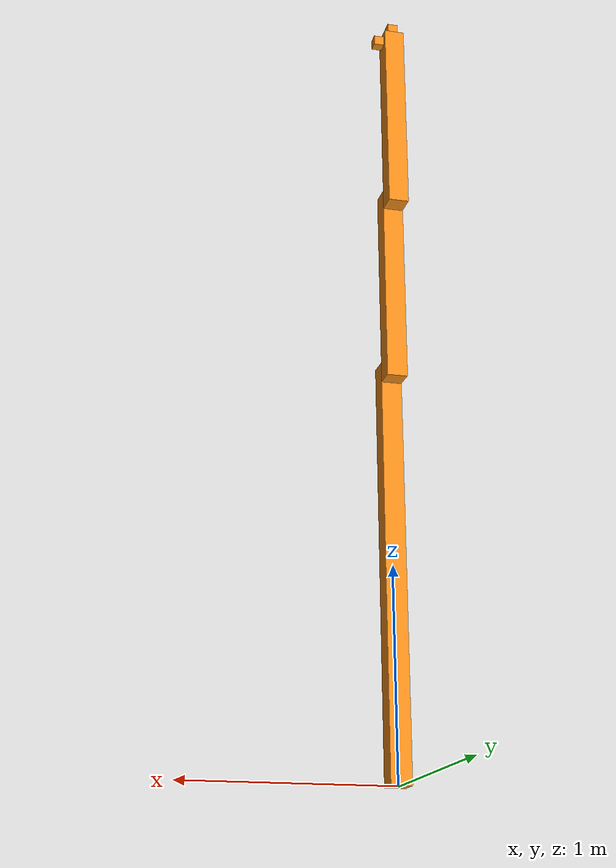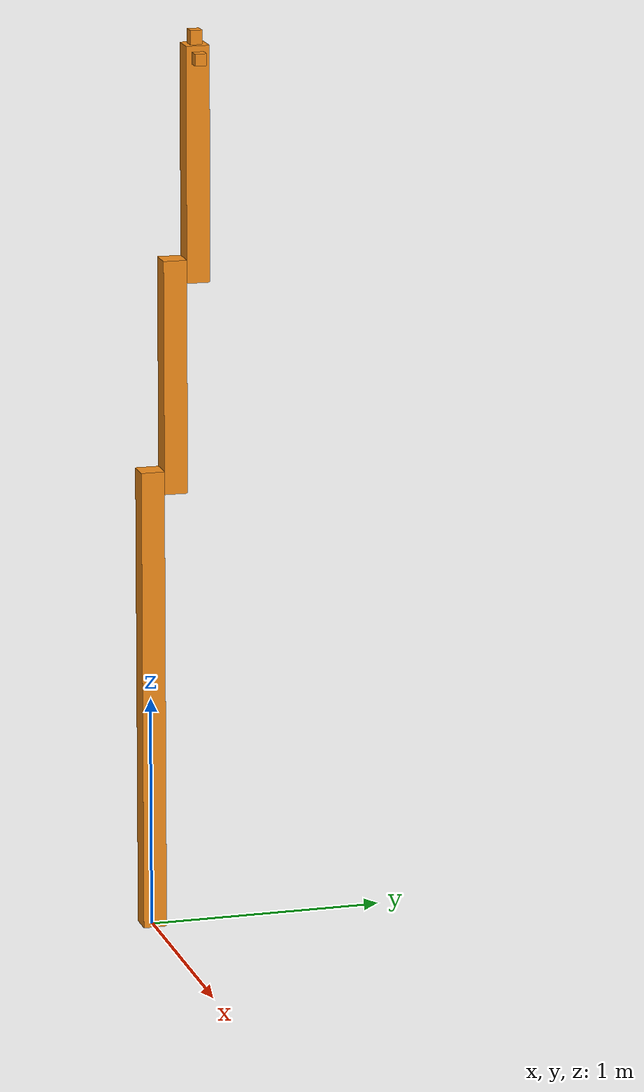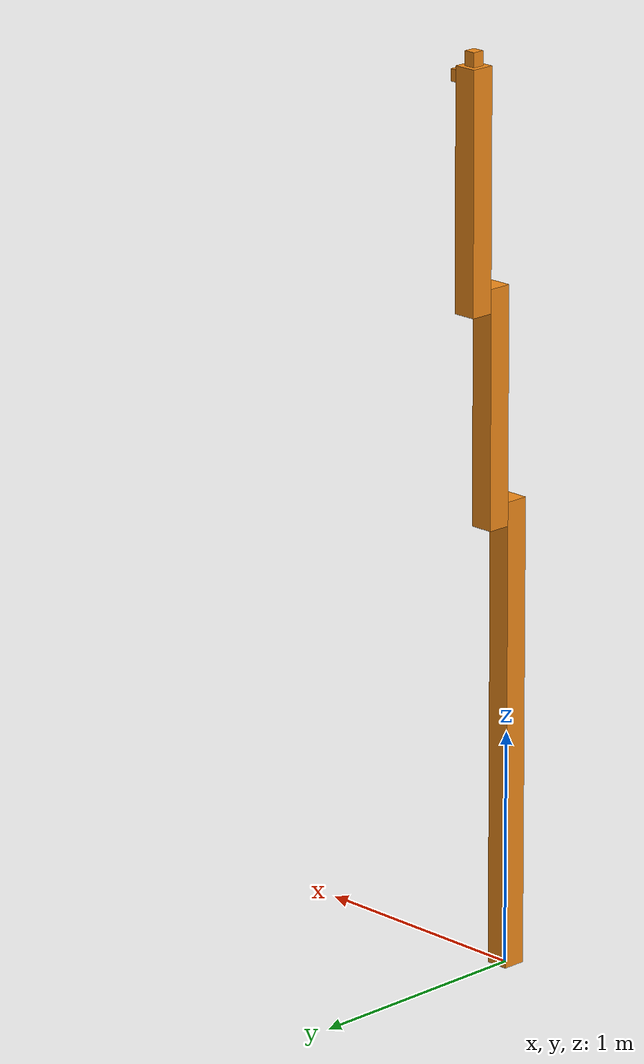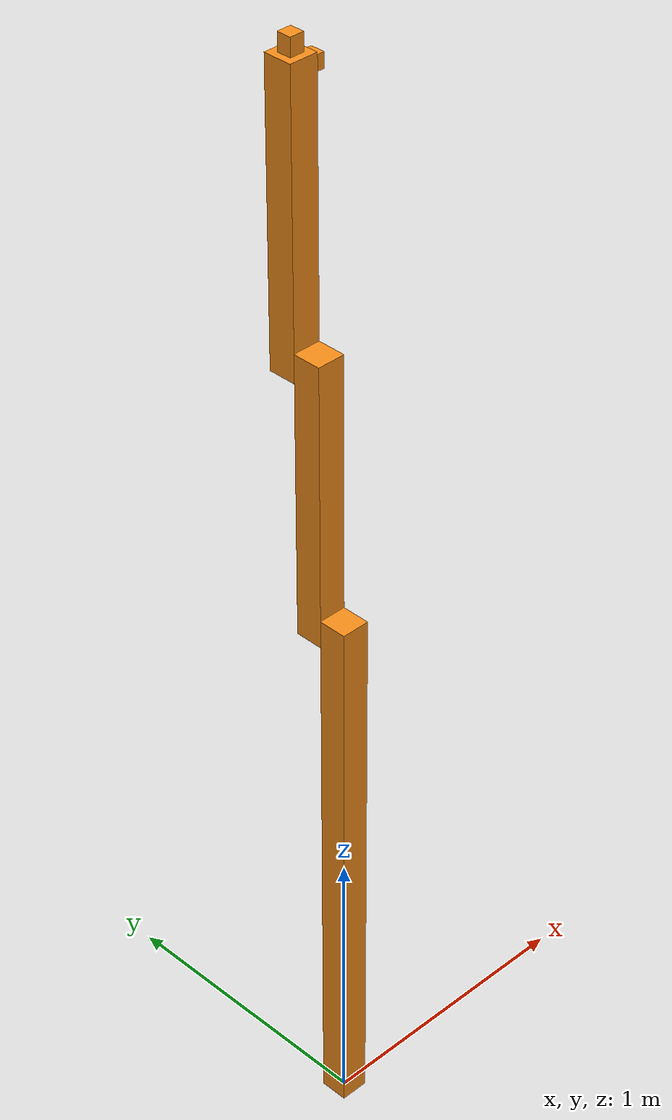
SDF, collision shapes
<sdf version='1.7'>
  <model name='rrbot'>
    <joint name='base_joint' type='fixed'>
      <pose relative_to='__model__'>0 0 0 0 -0 0</pose>
      <parent>world</parent>
      <child>base</child>
    </joint>
    <link name='base'>
      <pose relative_to='base_joint'>0 0 0 0 -0 0</pose>
      <inertial>
        <pose>0 0 1 0 -0 0</pose>
        <mass>1</mass>
        <inertia>
          <ixx>0.334167</ixx>
          <ixy>0</ixy>
          <ixz>0</ixz>
          <iyy>0.334167</iyy>
          <iyz>0</iyz>
          <izz>0.00166667</izz>
        </inertia>
      </inertial>
      <collision name='base_collision'>
        <pose>0 0 1 0 -0 0</pose>
        <geometry>
          <box>
            <size>0.1 0.1 2</size>
          </box>
        </geometry>
        <surface>
          <contact>
            <ode/>
          </contact>
          <friction>
            <ode>
              <mu>0.2</mu>
              <mu2>0.2</mu2>
            </ode>
          </friction>
        </surface>
      </collision>
      <visual name='base_visual'>
        <pose>0 0 1 0 -0 0</pose>
        <geometry>
          <box>
            <size>0.1 0.1 2</size>
          </box>
        </geometry>
        <material>
          <script>
            <name>Gazebo/Orange</name>
            <uri>file://media/materials/scripts/gazebo.material</uri>
          </script>
        </material>
      </visual>
    </link>
    <joint name='joint1' type='revolute'>
      <pose relative_to='base'>0 0.1 1.95 0 -0 0</pose>
      <parent>base</parent>
      <child>link2</child>
      <axis>
        <xyz>0 1 0</xyz>
        <limit>
          <lower>-1e+16</lower>
          <upper>1e+16</upper>
        </limit>
        <dynamics>
          <damping>0.7</damping>
          <friction>0</friction>
          <spring_reference>0</spring_reference>
          <spring_stiffness>0</spring_stiffness>
        </dynamics>
      </axis>
    </joint>
    <link name='link2'>
      <pose relative_to='joint1'>0 0 0 0 -0 0</pose>
      <inertial>
        <pose>0 0 0.45 0 -0 0</pose>
        <mass>1</mass>
        <inertia>
          <ixx>0.0841667</ixx>
          <ixy>0</ixy>
          <ixz>0</ixz>
          <iyy>0.0841667</iyy>
          <iyz>0</iyz>
          <izz>0.00166667</izz>
        </inertia>
      </inertial>
      <collision name='link2_collision'>
        <pose>0 0 0.45 0 -0 0</pose>
        <geometry>
          <box>
            <size>0.1 0.1 1</size>
          </box>
        </geometry>
        <surface>
          <contact>
            <ode/>
          </contact>
          <friction>
            <ode>
              <mu>0.2</mu>
              <mu2>0.2</mu2>
            </ode>
          </friction>
        </surface>
      </collision>
      <visual name='link2_visual'>
        <pose>0 0 0.45 0 -0 0</pose>
        <geometry>
          <box>
            <size>0.1 0.1 1</size>
          </box>
        </geometry>
        <material>
          <script>
            <name>Gazebo/Orange</name>
            <uri>file://media/materials/scripts/gazebo.material</uri>
          </script>
        </material>
      </visual>
    </link>
    <joint name='joint2' type='revolute'>
      <pose relative_to='link2'>0 0.1 0.9 0 -0 0</pose>
      <parent>link2</parent>
      <child>link3</child>
      <axis>
        <xyz>0 1 0</xyz>
        <limit>
          <lower>-1e+16</lower>
          <upper>1e+16</upper>
        </limit>
        <dynamics>
          <damping>0.7</damping>
          <friction>0</friction>
          <spring_reference>0</spring_reference>
          <spring_stiffness>0</spring_stiffness>
        </dynamics>
      </axis>
    </joint>
    <link name='link3'>
      <pose relative_to='joint2'>0 0 0 0 -0 0</pose>
      <inertial>
        <pose>1e-06 0 0.45001 0 -0 0</pose>
        <mass>1.00002</mass>
        <inertia>
          <ixx>0.0841734</ixx>
          <ixy>0</ixy>
          <ixz>-3.37493e-07</ixz>
          <iyy>0.0841735</iyy>
          <iyz>0</iyz>
          <izz>0.00166872</izz>
        </inertia>
      </inertial>
      <collision name='link3_collision'>
        <pose>0 0 0.45 0 -0 0</pose>
        <geometry>
          <box>
            <size>0.1 0.1 1</size>
          </box>
        </geometry>
        <surface>
          <contact>
            <ode/>
          </contact>
          <friction>
            <ode>
              <mu>0.2</mu>
              <mu2>0.2</mu2>
            </ode>
          </friction>
        </surface>
      </collision>
      <collision name='link3_fixed_joint_lump__camera_colision_collision_1'>
        <pose>0.075 0 0.9 0 -0 0</pose>
        <geometry>
          <box>
            <size>0.05 0.05 0.05</size>
          </box>
        </geometry>
      </collision>
      <collision name='link3_fixed_joint_lump__hokuyo_collision_2'>
        <pose>0 0 0.975 0 -0 0</pose>
        <geometry>
          <box>
            <size>0.05 0.05 0.0706</size>
          </box>
        </geometry>
        <surface>
          <contact>
            <ode/>
          </contact>
          <friction>
            <ode/>
          </friction>
        </surface>
      </collision>
      <visual name='link3_visual'>
        <pose>0 0 0.45 0 -0 0</pose>
        <geometry>
          <box>
            <size>0.1 0.1 1</size>
          </box>
        </geometry>
        <material>
          <script>
            <name>Gazebo/Orange</name>
            <uri>file://media/materials/scripts/gazebo.material</uri>
          </script>
        </material>
      </visual>
      <visual name='link3_fixed_joint_lump__camera_visual_visual_1'>
        <pose>0.075 0 0.9 0 -0 0</pose>
        <geometry>
          <box>
            <size>0.05 0.05 0.05</size>
          </box>
        </geometry>
        <material>
          <script>
            <name>Gazebo/Green</name>
            <uri>file://media/materials/scripts/gazebo.material</uri>
          </script>
        </material>
      </visual>
      <visual name='link3_fixed_joint_lump__hokuyo_visual_2'>
        <pose>0 0 0.975 0 -0 0</pose>
        <geometry>
          <mesh>
            <scale>1 1 1</scale>
            <uri>/home/mkhuthir/ws/install/bots/share/bots/meshes/rrbot/hokuyo.dae</uri>
          </mesh>
        </geometry>
      </visual>
      <sensor name='camera' type='camera'>
        <update_rate>30</update_rate>
        <camera name='head'>
          <horizontal_fov>1.39626</horizontal_fov>
          <image>
            <width>1280</width>
            <height>720</height>
            <format>R8G8B8</format>
          </image>
          <clip>
            <near>0.02</near>
            <far>300</far>
          </clip>
          <noise>
            <type>gaussian</type>
            <mean>0</mean>
            <stddev>0.007</stddev>
          </noise>
        </camera>
        <plugin name='camera_controller' filename='libgazebo_ros_camera.so'>
          <ros>
            <namespace>rrbot</namespace>
          </ros>
          <alwaysOn>1</alwaysOn>
          <updateRate>0.0</updateRate>
          <cameraName>camera</cameraName>
          <imageTopicName>image_raw</imageTopicName>
          <cameraInfoTopicName>camera_info</cameraInfoTopicName>
          <frameName>camera_optical</frameName>
          <hackBaseline>0.0</hackBaseline>
          <distortionK1>0.0</distortionK1>
          <distortionK2>0.0</distortionK2>
          <distortionK3>0.0</distortionK3>
          <distortionT1>0.0</distortionT1>
          <distortionT2>0.0</distortionT2>
          <CxPrime>0</CxPrime>
          <Cx>0.0</Cx>
          <Cy>0.0</Cy>
          <focalLength>0.0</focalLength>
        </plugin>
        <pose>0.075 0 0.9 0 -0 0</pose>
      </sensor>
      <sensor name='head_hokuyo_sensor' type='ray'>
        <plugin name='hokuyo' filename='libgazebo_ros_ray_sensor.so'>
          <ros>
            <namespace>rrbot</namespace>
          </ros>
          <output_type>sensor_msgs/LaserScan</output_type>
        </plugin>
        <update_rate>30</update_rate>
        <visualize>0</visualize>
        <ray>
          <scan>
            <horizontal>
              <samples>720</samples>
              <resolution>1</resolution>
              <min_angle>-3.14159</min_angle>
              <max_angle>3.14159</max_angle>
            </horizontal>
          </scan>
          <range>
            <min>0.1</min>
            <max>30</max>
            <resolution>0.01</resolution>
          </range>
          <noise>
            <type>gaussian</type>
            <mean>0</mean>
            <stddev>0.01</stddev>
          </noise>
        </ray>
        <pose>0 0 0.975 0 -0 0</pose>
      </sensor>
    </link>
    <static>0</static>
    <plugin name='gz_ros2_control' filename='libgazebo_ros2_control.so'/>
  </model>
</sdf>
